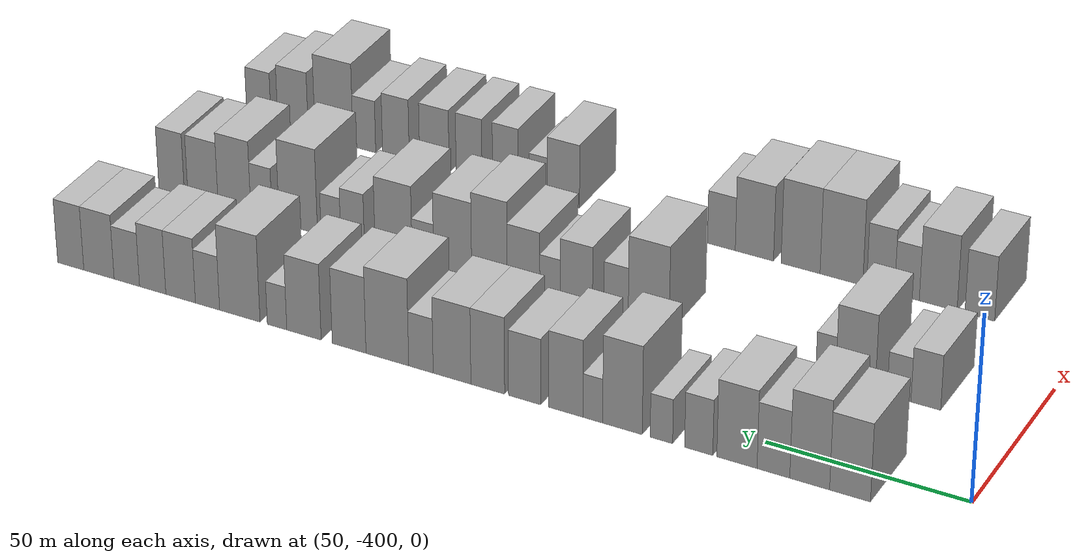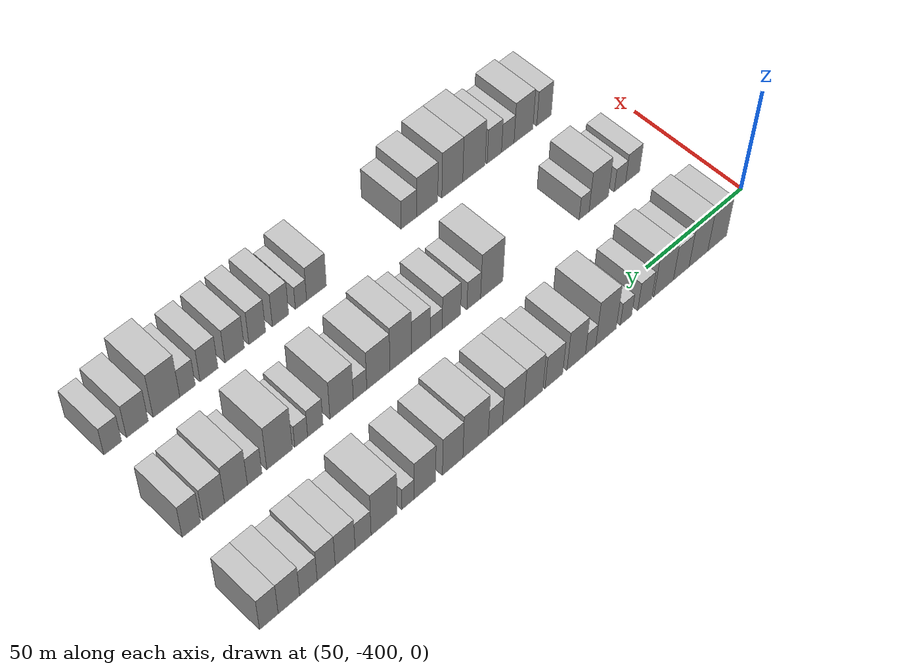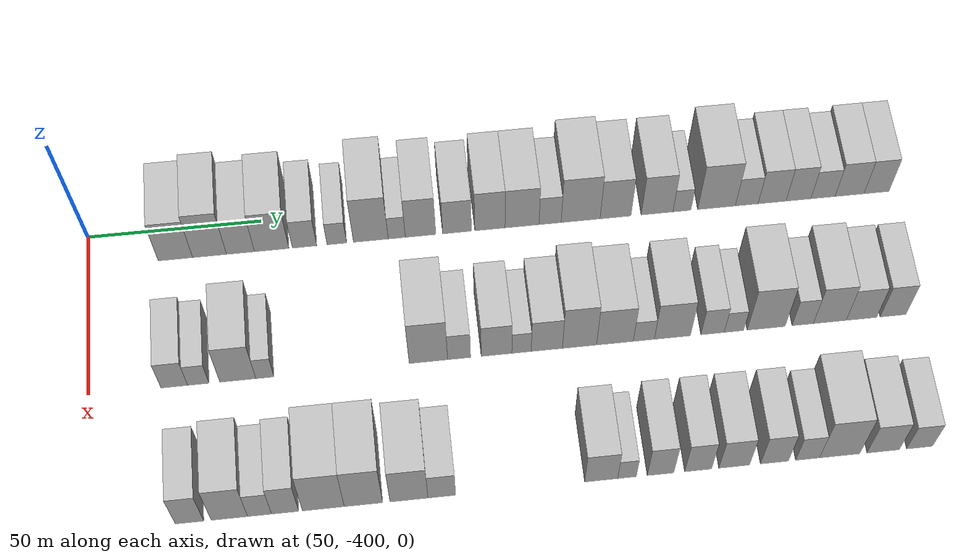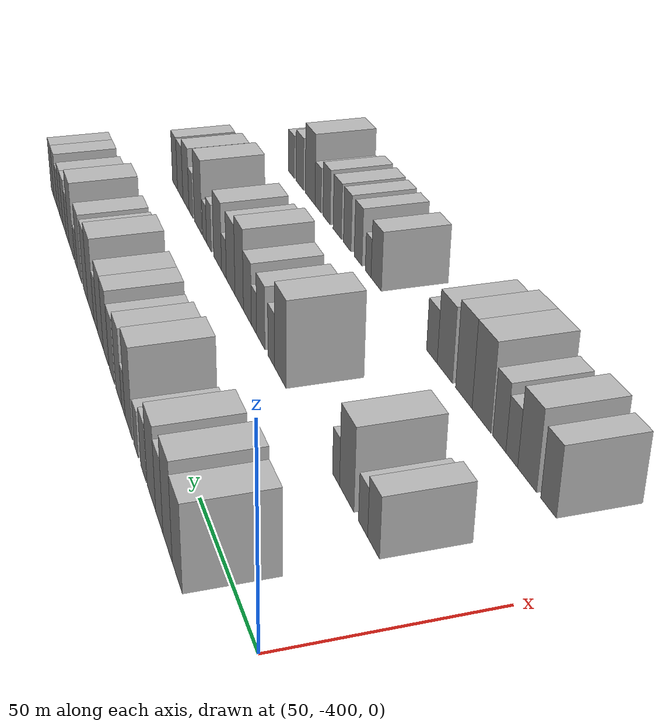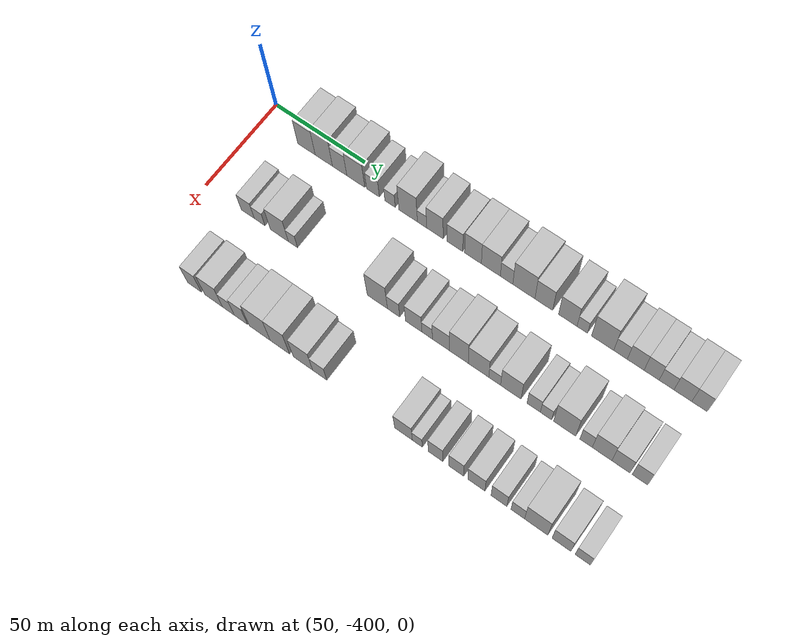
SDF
<sdf version="1.6">
 <world name="default">
  <model name="building_1">
   <static>1</static>
   <pose>50.0000 -375.0617 0 0.000000 0.000000 0.000000</pose>
   <link name="link">
    <pose>0 0 10.50 0 0 0</pose>
    <collision name="collision"><geometry><box><size>20.0000 9.8766 21.0000</size></box></geometry></collision>
    <visual name="visual">
     <cast_shadows>0</cast_shadows>
     <geometry><box><size>20.0000 9.8766 21.0000</size></box></geometry>
     <material>
      <script>
       <uri>model://HANNAS_wall/materials/scripts</uri>
       <uri>model://HANNAS_wall/materials/textures</uri>
       <name>vrc/HANNAS_wall</name>
      </script>
     </material>
    </visual>
   </link>
  </model>
  <model name="building_2">
   <static>1</static>
   <pose>50.0000 -365.2726 0 0.000000 0.000000 0.000000</pose>
   <link name="link">
    <pose>0 0 12.00 0 0 0</pose>
    <collision name="collision"><geometry><box><size>20.0000 9.7016 24.0000</size></box></geometry></collision>
    <visual name="visual">
     <cast_shadows>0</cast_shadows>
     <geometry><box><size>20.0000 9.7016 24.0000</size></box></geometry>
     <material>
      <script>
       <uri>model://HANNAS_wall/materials/scripts</uri>
       <uri>model://HANNAS_wall/materials/textures</uri>
       <name>vrc/HANNAS_wall</name>
      </script>
     </material>
    </visual>
   </link>
  </model>
  <model name="building_3">
   <static>1</static>
   <pose>50.0000 -356.4059 0 0.000000 0.000000 0.000000</pose>
   <link name="link">
    <pose>0 0 9.00 0 0 0</pose>
    <collision name="collision"><geometry><box><size>20.0000 8.0318 18.0000</size></box></geometry></collision>
    <visual name="visual">
     <cast_shadows>0</cast_shadows>
     <geometry><box><size>20.0000 8.0318 18.0000</size></box></geometry>
     <material>
      <script>
       <uri>model://HANNAS_wall/materials/scripts</uri>
       <uri>model://HANNAS_wall/materials/textures</uri>
       <name>vrc/HANNAS_wall</name>
      </script>
     </material>
    </visual>
   </link>
  </model>
  <model name="building_4">
   <static>1</static>
   <pose>50.0000 -347.4172 0 0.000000 0.000000 0.000000</pose>
   <link name="link">
    <pose>0 0 10.50 0 0 0</pose>
    <collision name="collision"><geometry><box><size>20.0000 9.9455 21.0000</size></box></geometry></collision>
    <visual name="visual">
     <cast_shadows>0</cast_shadows>
     <geometry><box><size>20.0000 9.9455 21.0000</size></box></geometry>
     <material>
      <script>
       <uri>model://HANNAS_wall/materials/scripts</uri>
       <uri>model://HANNAS_wall/materials/textures</uri>
       <name>vrc/HANNAS_wall</name>
      </script>
     </material>
    </visual>
   </link>
  </model>
  <model name="building_5">
   <static>1</static>
   <pose>50.0000 -337.9303 0 0.000000 0.000000 0.000000</pose>
   <link name="link">
    <pose>0 0 7.50 0 0 0</pose>
    <collision name="collision"><geometry><box><size>20.0000 7.0283 15.0000</size></box></geometry></collision>
    <visual name="visual">
     <cast_shadows>0</cast_shadows>
     <geometry><box><size>20.0000 7.0283 15.0000</size></box></geometry>
     <material>
      <script>
       <uri>model://HANNAS_wall/materials/scripts</uri>
       <uri>model://HANNAS_wall/materials/textures</uri>
       <name>vrc/HANNAS_wall</name>
      </script>
     </material>
    </visual>
   </link>
  </model>
  <model name="building_6">
   <static>1</static>
   <pose>50.0000 -328.5971 0 0.000000 0.000000 0.000000</pose>
   <link name="link">
    <pose>0 0 6.00 0 0 0</pose>
    <collision name="collision"><geometry><box><size>20.0000 5.6383 12.0000</size></box></geometry></collision>
    <visual name="visual">
     <cast_shadows>0</cast_shadows>
     <geometry><box><size>20.0000 5.6383 12.0000</size></box></geometry>
     <material>
      <script>
       <uri>model://HANNAS_wall/materials/scripts</uri>
       <uri>model://HANNAS_wall/materials/textures</uri>
       <name>vrc/HANNAS_wall</name>
      </script>
     </material>
    </visual>
   </link>
  </model>
  <model name="building_7">
   <static>1</static>
   <pose>50.0000 -318.7597 0 0.000000 0.000000 0.000000</pose>
   <link name="link">
    <pose>0 0 12.00 0 0 0</pose>
    <collision name="collision"><geometry><box><size>20.0000 10.0365 24.0000</size></box></geometry></collision>
    <visual name="visual">
     <cast_shadows>0</cast_shadows>
     <geometry><box><size>20.0000 10.0365 24.0000</size></box></geometry>
     <material>
      <script>
       <uri>model://HANNAS_wall/materials/scripts</uri>
       <uri>model://HANNAS_wall/materials/textures</uri>
       <name>vrc/HANNAS_wall</name>
      </script>
     </material>
    </visual>
   </link>
  </model>
  <model name="building_8">
   <static>1</static>
   <pose>50.0000 -311.2489 0 0.000000 0.000000 0.000000</pose>
   <link name="link">
    <pose>0 0 6.00 0 0 0</pose>
    <collision name="collision"><geometry><box><size>20.0000 4.9851 12.0000</size></box></geometry></collision>
    <visual name="visual">
     <cast_shadows>0</cast_shadows>
     <geometry><box><size>20.0000 4.9851 12.0000</size></box></geometry>
     <material>
      <script>
       <uri>model://HANNAS_wall/materials/scripts</uri>
       <uri>model://HANNAS_wall/materials/textures</uri>
       <name>vrc/HANNAS_wall</name>
      </script>
     </material>
    </visual>
   </link>
  </model>
  <model name="building_9">
   <static>1</static>
   <pose>50.0000 -304.3338 0 0.000000 0.000000 0.000000</pose>
   <link name="link">
    <pose>0 0 10.50 0 0 0</pose>
    <collision name="collision"><geometry><box><size>20.0000 8.8450 21.0000</size></box></geometry></collision>
    <visual name="visual">
     <cast_shadows>0</cast_shadows>
     <geometry><box><size>20.0000 8.8450 21.0000</size></box></geometry>
     <material>
      <script>
       <uri>model://HANNAS_wall/materials/scripts</uri>
       <uri>model://HANNAS_wall/materials/textures</uri>
       <name>vrc/HANNAS_wall</name>
      </script>
     </material>
    </visual>
   </link>
  </model>
  <model name="building_10">
   <static>1</static>
   <pose>50.0000 -293.7215 0 0.000000 0.000000 0.000000</pose>
   <link name="link">
    <pose>0 0 9.00 0 0 0</pose>
    <collision name="collision"><geometry><box><size>20.0000 8.3798 18.0000</size></box></geometry></collision>
    <visual name="visual">
     <cast_shadows>0</cast_shadows>
     <geometry><box><size>20.0000 8.3798 18.0000</size></box></geometry>
     <material>
      <script>
       <uri>model://HANNAS_wall/materials/scripts</uri>
       <uri>model://HANNAS_wall/materials/textures</uri>
       <name>vrc/HANNAS_wall</name>
      </script>
     </material>
    </visual>
   </link>
  </model>
  <model name="building_11">
   <static>1</static>
   <pose>50.0000 -284.1320 0 0.000000 0.000000 0.000000</pose>
   <link name="link">
    <pose>0 0 10.50 0 0 0</pose>
    <collision name="collision"><geometry><box><size>20.0000 8.7991 21.0000</size></box></geometry></collision>
    <visual name="visual">
     <cast_shadows>0</cast_shadows>
     <geometry><box><size>20.0000 8.7991 21.0000</size></box></geometry>
     <material>
      <script>
       <uri>model://HANNAS_wall/materials/scripts</uri>
       <uri>model://HANNAS_wall/materials/textures</uri>
       <name>vrc/HANNAS_wall</name>
      </script>
     </material>
    </visual>
   </link>
  </model>
  <model name="building_12">
   <static>1</static>
   <pose>50.0000 -274.7714 0 0.000000 0.000000 0.000000</pose>
   <link name="link">
    <pose>0 0 10.50 0 0 0</pose>
    <collision name="collision"><geometry><box><size>20.0000 9.9222 21.0000</size></box></geometry></collision>
    <visual name="visual">
     <cast_shadows>0</cast_shadows>
     <geometry><box><size>20.0000 9.9222 21.0000</size></box></geometry>
     <material>
      <script>
       <uri>model://HANNAS_wall/materials/scripts</uri>
       <uri>model://HANNAS_wall/materials/textures</uri>
       <name>vrc/HANNAS_wall</name>
      </script>
     </material>
    </visual>
   </link>
  </model>
  <model name="building_13">
   <static>1</static>
   <pose>50.0000 -266.5715 0 0.000000 0.000000 0.000000</pose>
   <link name="link">
    <pose>0 0 7.50 0 0 0</pose>
    <collision name="collision"><geometry><box><size>20.0000 6.4775 15.0000</size></box></geometry></collision>
    <visual name="visual">
     <cast_shadows>0</cast_shadows>
     <geometry><box><size>20.0000 6.4775 15.0000</size></box></geometry>
     <material>
      <script>
       <uri>model://HANNAS_wall/materials/scripts</uri>
       <uri>model://HANNAS_wall/materials/textures</uri>
       <name>vrc/HANNAS_wall</name>
      </script>
     </material>
    </visual>
   </link>
  </model>
  <model name="building_14">
   <static>1</static>
   <pose>50.0000 -257.6300 0 0.000000 0.000000 0.000000</pose>
   <link name="link">
    <pose>0 0 12.00 0 0 0</pose>
    <collision name="collision"><geometry><box><size>20.0000 11.4055 24.0000</size></box></geometry></collision>
    <visual name="visual">
     <cast_shadows>0</cast_shadows>
     <geometry><box><size>20.0000 11.4055 24.0000</size></box></geometry>
     <material>
      <script>
       <uri>model://HANNAS_wall/materials/scripts</uri>
       <uri>model://HANNAS_wall/materials/textures</uri>
       <name>vrc/HANNAS_wall</name>
      </script>
     </material>
    </visual>
   </link>
  </model>
  <model name="building_15">
   <static>1</static>
   <pose>50.0000 -247.3824 0 0.000000 0.000000 0.000000</pose>
   <link name="link">
    <pose>0 0 10.50 0 0 0</pose>
    <collision name="collision"><geometry><box><size>20.0000 9.0897 21.0000</size></box></geometry></collision>
    <visual name="visual">
     <cast_shadows>0</cast_shadows>
     <geometry><box><size>20.0000 9.0897 21.0000</size></box></geometry>
     <material>
      <script>
       <uri>model://HANNAS_wall/materials/scripts</uri>
       <uri>model://HANNAS_wall/materials/textures</uri>
       <name>vrc/HANNAS_wall</name>
      </script>
     </material>
    </visual>
   </link>
  </model>
  <model name="building_16">
   <static>1</static>
   <pose>50.0000 -235.1703 0 0.000000 0.000000 0.000000</pose>
   <link name="link">
    <pose>0 0 10.50 0 0 0</pose>
    <collision name="collision"><geometry><box><size>20.0000 9.3346 21.0000</size></box></geometry></collision>
    <visual name="visual">
     <cast_shadows>0</cast_shadows>
     <geometry><box><size>20.0000 9.3346 21.0000</size></box></geometry>
     <material>
      <script>
       <uri>model://HANNAS_wall/materials/scripts</uri>
       <uri>model://HANNAS_wall/materials/textures</uri>
       <name>vrc/HANNAS_wall</name>
      </script>
     </material>
    </visual>
   </link>
  </model>
  <model name="building_17">
   <static>1</static>
   <pose>50.0000 -227.8410 0 0.000000 0.000000 0.000000</pose>
   <link name="link">
    <pose>0 0 6.00 0 0 0</pose>
    <collision name="collision"><geometry><box><size>20.0000 5.3239 12.0000</size></box></geometry></collision>
    <visual name="visual">
     <cast_shadows>0</cast_shadows>
     <geometry><box><size>20.0000 5.3239 12.0000</size></box></geometry>
     <material>
      <script>
       <uri>model://HANNAS_wall/materials/scripts</uri>
       <uri>model://HANNAS_wall/materials/textures</uri>
       <name>vrc/HANNAS_wall</name>
      </script>
     </material>
    </visual>
   </link>
  </model>
  <model name="building_18">
   <static>1</static>
   <pose>50.0000 -217.6135 0 0.000000 0.000000 0.000000</pose>
   <link name="link">
    <pose>0 0 12.00 0 0 0</pose>
    <collision name="collision"><geometry><box><size>20.0000 11.1311 24.0000</size></box></geometry></collision>
    <visual name="visual">
     <cast_shadows>0</cast_shadows>
     <geometry><box><size>20.0000 11.1311 24.0000</size></box></geometry>
     <material>
      <script>
       <uri>model://HANNAS_wall/materials/scripts</uri>
       <uri>model://HANNAS_wall/materials/textures</uri>
       <name>vrc/HANNAS_wall</name>
      </script>
     </material>
    </visual>
   </link>
  </model>
  <model name="building_19">
   <static>1</static>
   <pose>50.0000 -208.6832 0 0.000000 0.000000 0.000000</pose>
   <link name="link">
    <pose>0 0 7.50 0 0 0</pose>
    <collision name="collision"><geometry><box><size>20.0000 6.7295 15.0000</size></box></geometry></collision>
    <visual name="visual">
     <cast_shadows>0</cast_shadows>
     <geometry><box><size>20.0000 6.7295 15.0000</size></box></geometry>
     <material>
      <script>
       <uri>model://HANNAS_wall/materials/scripts</uri>
       <uri>model://HANNAS_wall/materials/textures</uri>
       <name>vrc/HANNAS_wall</name>
      </script>
     </material>
    </visual>
   </link>
  </model>
  <model name="building_20">
   <static>1</static>
   <pose>50.0000 -201.1800 0 0.000000 0.000000 0.000000</pose>
   <link name="link">
    <pose>0 0 9.00 0 0 0</pose>
    <collision name="collision"><geometry><box><size>20.0000 8.2770 18.0000</size></box></geometry></collision>
    <visual name="visual">
     <cast_shadows>0</cast_shadows>
     <geometry><box><size>20.0000 8.2770 18.0000</size></box></geometry>
     <material>
      <script>
       <uri>model://HANNAS_wall/materials/scripts</uri>
       <uri>model://HANNAS_wall/materials/textures</uri>
       <name>vrc/HANNAS_wall</name>
      </script>
     </material>
    </visual>
   </link>
  </model>
  <model name="building_21">
   <static>1</static>
   <pose>50.0000 -193.3477 0 0.000000 0.000000 0.000000</pose>
   <link name="link">
    <pose>0 0 9.00 0 0 0</pose>
    <collision name="collision"><geometry><box><size>20.0000 7.3875 18.0000</size></box></geometry></collision>
    <visual name="visual">
     <cast_shadows>0</cast_shadows>
     <geometry><box><size>20.0000 7.3875 18.0000</size></box></geometry>
     <material>
      <script>
       <uri>model://HANNAS_wall/materials/scripts</uri>
       <uri>model://HANNAS_wall/materials/textures</uri>
       <name>vrc/HANNAS_wall</name>
      </script>
     </material>
    </visual>
   </link>
  </model>
  <model name="building_22">
   <static>1</static>
   <pose>50.0000 -186.0562 0 0.000000 0.000000 0.000000</pose>
   <link name="link">
    <pose>0 0 7.50 0 0 0</pose>
    <collision name="collision"><geometry><box><size>20.0000 7.1954 15.0000</size></box></geometry></collision>
    <visual name="visual">
     <cast_shadows>0</cast_shadows>
     <geometry><box><size>20.0000 7.1954 15.0000</size></box></geometry>
     <material>
      <script>
       <uri>model://HANNAS_wall/materials/scripts</uri>
       <uri>model://HANNAS_wall/materials/textures</uri>
       <name>vrc/HANNAS_wall</name>
      </script>
     </material>
    </visual>
   </link>
  </model>
  <model name="building_23">
   <static>1</static>
   <pose>50.0000 -178.1469 0 0.000000 0.000000 0.000000</pose>
   <link name="link">
    <pose>0 0 9.00 0 0 0</pose>
    <collision name="collision"><geometry><box><size>20.0000 8.6233 18.0000</size></box></geometry></collision>
    <visual name="visual">
     <cast_shadows>0</cast_shadows>
     <geometry><box><size>20.0000 8.6233 18.0000</size></box></geometry>
     <material>
      <script>
       <uri>model://HANNAS_wall/materials/scripts</uri>
       <uri>model://HANNAS_wall/materials/textures</uri>
       <name>vrc/HANNAS_wall</name>
      </script>
     </material>
    </visual>
   </link>
  </model>
  <model name="building_24">
   <static>1</static>
   <pose>50.0000 -170.1049 0 0.000000 0.000000 0.000000</pose>
   <link name="link">
    <pose>0 0 9.00 0 0 0</pose>
    <collision name="collision"><geometry><box><size>20.0000 7.4606 18.0000</size></box></geometry></collision>
    <visual name="visual">
     <cast_shadows>0</cast_shadows>
     <geometry><box><size>20.0000 7.4606 18.0000</size></box></geometry>
     <material>
      <script>
       <uri>model://HANNAS_wall/materials/scripts</uri>
       <uri>model://HANNAS_wall/materials/textures</uri>
       <name>vrc/HANNAS_wall</name>
      </script>
     </material>
    </visual>
   </link>
  </model>
  <model name="building_87">
   <static>1</static>
   <pose>90.0000 -376.3183 0 0.000000 0.000000 0.000000</pose>
   <link name="link">
    <pose>0 0 7.50 0 0 0</pose>
    <collision name="collision"><geometry><box><size>20.0000 7.3633 15.0000</size></box></geometry></collision>
    <visual name="visual">
     <cast_shadows>0</cast_shadows>
     <geometry><box><size>20.0000 7.3633 15.0000</size></box></geometry>
     <material>
      <script>
       <uri>model://HANNAS_wall/materials/scripts</uri>
       <uri>model://HANNAS_wall/materials/textures</uri>
       <name>vrc/HANNAS_wall</name>
      </script>
     </material>
    </visual>
   </link>
  </model>
  <model name="building_88">
   <static>1</static>
   <pose>90.0000 -369.6864 0 0.000000 0.000000 0.000000</pose>
   <link name="link">
    <pose>0 0 6.00 0 0 0</pose>
    <collision name="collision"><geometry><box><size>20.0000 5.9006 12.0000</size></box></geometry></collision>
    <visual name="visual">
     <cast_shadows>0</cast_shadows>
     <geometry><box><size>20.0000 5.9006 12.0000</size></box></geometry>
     <material>
      <script>
       <uri>model://HANNAS_wall/materials/scripts</uri>
       <uri>model://HANNAS_wall/materials/textures</uri>
       <name>vrc/HANNAS_wall</name>
      </script>
     </material>
    </visual>
   </link>
  </model>
  <model name="building_89">
   <static>1</static>
   <pose>90.0000 -358.7619 0 0.000000 0.000000 0.000000</pose>
   <link name="link">
    <pose>0 0 10.50 0 0 0</pose>
    <collision name="collision"><geometry><box><size>20.0000 9.9483 21.0000</size></box></geometry></collision>
    <visual name="visual">
     <cast_shadows>0</cast_shadows>
     <geometry><box><size>20.0000 9.9483 21.0000</size></box></geometry>
     <material>
      <script>
       <uri>model://HANNAS_wall/materials/scripts</uri>
       <uri>model://HANNAS_wall/materials/textures</uri>
       <name>vrc/HANNAS_wall</name>
      </script>
     </material>
    </visual>
   </link>
  </model>
  <model name="building_90">
   <static>1</static>
   <pose>90.0000 -351.2698 0 0.000000 0.000000 0.000000</pose>
   <link name="link">
    <pose>0 0 6.00 0 0 0</pose>
    <collision name="collision"><geometry><box><size>20.0000 5.0361 12.0000</size></box></geometry></collision>
    <visual name="visual">
     <cast_shadows>0</cast_shadows>
     <geometry><box><size>20.0000 5.0361 12.0000</size></box></geometry>
     <material>
      <script>
       <uri>model://HANNAS_wall/materials/scripts</uri>
       <uri>model://HANNAS_wall/materials/textures</uri>
       <name>vrc/HANNAS_wall</name>
      </script>
     </material>
    </visual>
   </link>
  </model>
  <model name="building_91">
   <static>1</static>
   <pose>90.0000 -305.6567 0 0.000000 0.000000 0.000000</pose>
   <link name="link">
    <pose>0 0 12.00 0 0 0</pose>
    <collision name="collision"><geometry><box><size>20.0000 10.7300 24.0000</size></box></geometry></collision>
    <visual name="visual">
     <cast_shadows>0</cast_shadows>
     <geometry><box><size>20.0000 10.7300 24.0000</size></box></geometry>
     <material>
      <script>
       <uri>model://HANNAS_wall/materials/scripts</uri>
       <uri>model://HANNAS_wall/materials/textures</uri>
       <name>vrc/HANNAS_wall</name>
      </script>
     </material>
    </visual>
   </link>
  </model>
  <model name="building_92">
   <static>1</static>
   <pose>90.0000 -297.0650 0 0.000000 0.000000 0.000000</pose>
   <link name="link">
    <pose>0 0 7.50 0 0 0</pose>
    <collision name="collision"><geometry><box><size>20.0000 6.4535 15.0000</size></box></geometry></collision>
    <visual name="visual">
     <cast_shadows>0</cast_shadows>
     <geometry><box><size>20.0000 6.4535 15.0000</size></box></geometry>
     <material>
      <script>
       <uri>model://HANNAS_wall/materials/scripts</uri>
       <uri>model://HANNAS_wall/materials/textures</uri>
       <name>vrc/HANNAS_wall</name>
      </script>
     </material>
    </visual>
   </link>
  </model>
  <model name="building_93">
   <static>1</static>
   <pose>90.0000 -286.5413 0 0.000000 0.000000 0.000000</pose>
   <link name="link">
    <pose>0 0 9.00 0 0 0</pose>
    <collision name="collision"><geometry><box><size>20.0000 8.5939 18.0000</size></box></geometry></collision>
    <visual name="visual">
     <cast_shadows>0</cast_shadows>
     <geometry><box><size>20.0000 8.5939 18.0000</size></box></geometry>
     <material>
      <script>
       <uri>model://HANNAS_wall/materials/scripts</uri>
       <uri>model://HANNAS_wall/materials/textures</uri>
       <name>vrc/HANNAS_wall</name>
      </script>
     </material>
    </visual>
   </link>
  </model>
  <model name="building_94">
   <static>1</static>
   <pose>90.0000 -279.5158 0 0.000000 0.000000 0.000000</pose>
   <link name="link">
    <pose>0 0 6.00 0 0 0</pose>
    <collision name="collision"><geometry><box><size>20.0000 5.4570 12.0000</size></box></geometry></collision>
    <visual name="visual">
     <cast_shadows>0</cast_shadows>
     <geometry><box><size>20.0000 5.4570 12.0000</size></box></geometry>
     <material>
      <script>
       <uri>model://HANNAS_wall/materials/scripts</uri>
       <uri>model://HANNAS_wall/materials/textures</uri>
       <name>vrc/HANNAS_wall</name>
      </script>
     </material>
    </visual>
   </link>
  </model>
  <model name="building_95">
   <static>1</static>
   <pose>90.0000 -272.3932 0 0.000000 0.000000 0.000000</pose>
   <link name="link">
    <pose>0 0 9.00 0 0 0</pose>
    <collision name="collision"><geometry><box><size>20.0000 8.7882 18.0000</size></box></geometry></collision>
    <visual name="visual">
     <cast_shadows>0</cast_shadows>
     <geometry><box><size>20.0000 8.7882 18.0000</size></box></geometry>
     <material>
      <script>
       <uri>model://HANNAS_wall/materials/scripts</uri>
       <uri>model://HANNAS_wall/materials/textures</uri>
       <name>vrc/HANNAS_wall</name>
      </script>
     </material>
    </visual>
   </link>
  </model>
  <model name="building_96">
   <static>1</static>
   <pose>90.0000 -263.1696 0 0.000000 0.000000 0.000000</pose>
   <link name="link">
    <pose>0 0 12.00 0 0 0</pose>
    <collision name="collision"><geometry><box><size>20.0000 9.6590 24.0000</size></box></geometry></collision>
    <visual name="visual">
     <cast_shadows>0</cast_shadows>
     <geometry><box><size>20.0000 9.6590 24.0000</size></box></geometry>
     <material>
      <script>
       <uri>model://HANNAS_wall/materials/scripts</uri>
       <uri>model://HANNAS_wall/materials/textures</uri>
       <name>vrc/HANNAS_wall</name>
      </script>
     </material>
    </visual>
   </link>
  </model>
  <model name="building_97">
   <static>1</static>
   <pose>90.0000 -253.1391 0 0.000000 0.000000 0.000000</pose>
   <link name="link">
    <pose>0 0 10.50 0 0 0</pose>
    <collision name="collision"><geometry><box><size>20.0000 10.4021 21.0000</size></box></geometry></collision>
    <visual name="visual">
     <cast_shadows>0</cast_shadows>
     <geometry><box><size>20.0000 10.4021 21.0000</size></box></geometry>
     <material>
      <script>
       <uri>model://HANNAS_wall/materials/scripts</uri>
       <uri>model://HANNAS_wall/materials/textures</uri>
       <name>vrc/HANNAS_wall</name>
      </script>
     </material>
    </visual>
   </link>
  </model>
  <model name="building_98">
   <static>1</static>
   <pose>90.0000 -244.9628 0 0.000000 0.000000 0.000000</pose>
   <link name="link">
    <pose>0 0 6.00 0 0 0</pose>
    <collision name="collision"><geometry><box><size>20.0000 5.9505 12.0000</size></box></geometry></collision>
    <visual name="visual">
     <cast_shadows>0</cast_shadows>
     <geometry><box><size>20.0000 5.9505 12.0000</size></box></geometry>
     <material>
      <script>
       <uri>model://HANNAS_wall/materials/scripts</uri>
       <uri>model://HANNAS_wall/materials/textures</uri>
       <name>vrc/HANNAS_wall</name>
      </script>
     </material>
    </visual>
   </link>
  </model>
  <model name="building_99">
   <static>1</static>
   <pose>90.0000 -236.8596 0 0.000000 0.000000 0.000000</pose>
   <link name="link">
    <pose>0 0 10.50 0 0 0</pose>
    <collision name="collision"><geometry><box><size>20.0000 10.2559 21.0000</size></box></geometry></collision>
    <visual name="visual">
     <cast_shadows>0</cast_shadows>
     <geometry><box><size>20.0000 10.2559 21.0000</size></box></geometry>
     <material>
      <script>
       <uri>model://HANNAS_wall/materials/scripts</uri>
       <uri>model://HANNAS_wall/materials/textures</uri>
       <name>vrc/HANNAS_wall</name>
      </script>
     </material>
    </visual>
   </link>
  </model>
  <model name="building_100">
   <static>1</static>
   <pose>90.0000 -225.4200 0 0.000000 0.000000 0.000000</pose>
   <link name="link">
    <pose>0 0 7.50 0 0 0</pose>
    <collision name="collision"><geometry><box><size>20.0000 6.6235 15.0000</size></box></geometry></collision>
    <visual name="visual">
     <cast_shadows>0</cast_shadows>
     <geometry><box><size>20.0000 6.6235 15.0000</size></box></geometry>
     <material>
      <script>
       <uri>model://HANNAS_wall/materials/scripts</uri>
       <uri>model://HANNAS_wall/materials/textures</uri>
       <name>vrc/HANNAS_wall</name>
      </script>
     </material>
    </visual>
   </link>
  </model>
  <model name="building_101">
   <static>1</static>
   <pose>90.0000 -219.3354 0 0.000000 0.000000 0.000000</pose>
   <link name="link">
    <pose>0 0 6.00 0 0 0</pose>
    <collision name="collision"><geometry><box><size>20.0000 5.5457 12.0000</size></box></geometry></collision>
    <visual name="visual">
     <cast_shadows>0</cast_shadows>
     <geometry><box><size>20.0000 5.5457 12.0000</size></box></geometry>
     <material>
      <script>
       <uri>model://HANNAS_wall/materials/scripts</uri>
       <uri>model://HANNAS_wall/materials/textures</uri>
       <name>vrc/HANNAS_wall</name>
      </script>
     </material>
    </visual>
   </link>
  </model>
  <model name="building_102">
   <static>1</static>
   <pose>90.0000 -210.1430 0 0.000000 0.000000 0.000000</pose>
   <link name="link">
    <pose>0 0 12.00 0 0 0</pose>
    <collision name="collision"><geometry><box><size>20.0000 10.8391 24.0000</size></box></geometry></collision>
    <visual name="visual">
     <cast_shadows>0</cast_shadows>
     <geometry><box><size>20.0000 10.8391 24.0000</size></box></geometry>
     <material>
      <script>
       <uri>model://HANNAS_wall/materials/scripts</uri>
       <uri>model://HANNAS_wall/materials/textures</uri>
       <name>vrc/HANNAS_wall</name>
      </script>
     </material>
    </visual>
   </link>
  </model>
  <model name="building_103">
   <static>1</static>
   <pose>90.0000 -199.6832 0 0.000000 0.000000 0.000000</pose>
   <link name="link">
    <pose>0 0 7.50 0 0 0</pose>
    <collision name="collision"><geometry><box><size>20.0000 6.0807 15.0000</size></box></geometry></collision>
    <visual name="visual">
     <cast_shadows>0</cast_shadows>
     <geometry><box><size>20.0000 6.0807 15.0000</size></box></geometry>
     <material>
      <script>
       <uri>model://HANNAS_wall/materials/scripts</uri>
       <uri>model://HANNAS_wall/materials/textures</uri>
       <name>vrc/HANNAS_wall</name>
      </script>
     </material>
    </visual>
   </link>
  </model>
  <model name="building_104">
   <static>1</static>
   <pose>90.0000 -191.9270 0 0.000000 0.000000 0.000000</pose>
   <link name="link">
    <pose>0 0 10.50 0 0 0</pose>
    <collision name="collision"><geometry><box><size>20.0000 9.4317 21.0000</size></box></geometry></collision>
    <visual name="visual">
     <cast_shadows>0</cast_shadows>
     <geometry><box><size>20.0000 9.4317 21.0000</size></box></geometry>
     <material>
      <script>
       <uri>model://HANNAS_wall/materials/scripts</uri>
       <uri>model://HANNAS_wall/materials/textures</uri>
       <name>vrc/HANNAS_wall</name>
      </script>
     </material>
    </visual>
   </link>
  </model>
  <model name="building_105">
   <static>1</static>
   <pose>90.0000 -182.8440 0 0.000000 0.000000 0.000000</pose>
   <link name="link">
    <pose>0 0 9.00 0 0 0</pose>
    <collision name="collision"><geometry><box><size>20.0000 8.7341 18.0000</size></box></geometry></collision>
    <visual name="visual">
     <cast_shadows>0</cast_shadows>
     <geometry><box><size>20.0000 8.7341 18.0000</size></box></geometry>
     <material>
      <script>
       <uri>model://HANNAS_wall/materials/scripts</uri>
       <uri>model://HANNAS_wall/materials/textures</uri>
       <name>vrc/HANNAS_wall</name>
      </script>
     </material>
    </visual>
   </link>
  </model>
  <model name="building_106">
   <static>1</static>
   <pose>90.0000 -173.7537 0 0.000000 0.000000 0.000000</pose>
   <link name="link">
    <pose>0 0 9.00 0 0 0</pose>
    <collision name="collision"><geometry><box><size>20.0000 7.4464 18.0000</size></box></geometry></collision>
    <visual name="visual">
     <cast_shadows>0</cast_shadows>
     <geometry><box><size>20.0000 7.4464 18.0000</size></box></geometry>
     <material>
      <script>
       <uri>model://HANNAS_wall/materials/scripts</uri>
       <uri>model://HANNAS_wall/materials/textures</uri>
       <name>vrc/HANNAS_wall</name>
      </script>
     </material>
    </visual>
   </link>
  </model>
  <model name="building_167">
   <static>1</static>
   <pose>130.0000 -373.2179 0 0.000000 0.000000 0.000000</pose>
   <link name="link">
    <pose>0 0 9.00 0 0 0</pose>
    <collision name="collision"><geometry><box><size>20.0000 7.5641 18.0000</size></box></geometry></collision>
    <visual name="visual">
     <cast_shadows>0</cast_shadows>
     <geometry><box><size>20.0000 7.5641 18.0000</size></box></geometry>
     <material>
      <script>
       <uri>model://HANNAS_wall/materials/scripts</uri>
       <uri>model://HANNAS_wall/materials/textures</uri>
       <name>vrc/HANNAS_wall</name>
      </script>
     </material>
    </visual>
   </link>
  </model>
  <model name="building_168">
   <static>1</static>
   <pose>130.0000 -362.5831 0 0.000000 0.000000 0.000000</pose>
   <link name="link">
    <pose>0 0 10.50 0 0 0</pose>
    <collision name="collision"><geometry><box><size>20.0000 9.7055 21.0000</size></box></geometry></collision>
    <visual name="visual">
     <cast_shadows>0</cast_shadows>
     <geometry><box><size>20.0000 9.7055 21.0000</size></box></geometry>
     <material>
      <script>
       <uri>model://HANNAS_wall/materials/scripts</uri>
       <uri>model://HANNAS_wall/materials/textures</uri>
       <name>vrc/HANNAS_wall</name>
      </script>
     </material>
    </visual>
   </link>
  </model>
  <model name="building_169">
   <static>1</static>
   <pose>130.0000 -354.5400 0 0.000000 0.000000 0.000000</pose>
   <link name="link">
    <pose>0 0 7.50 0 0 0</pose>
    <collision name="collision"><geometry><box><size>20.0000 6.3807 15.0000</size></box></geometry></collision>
    <visual name="visual">
     <cast_shadows>0</cast_shadows>
     <geometry><box><size>20.0000 6.3807 15.0000</size></box></geometry>
     <material>
      <script>
       <uri>model://HANNAS_wall/materials/scripts</uri>
       <uri>model://HANNAS_wall/materials/textures</uri>
       <name>vrc/HANNAS_wall</name>
      </script>
     </material>
    </visual>
   </link>
  </model>
  <model name="building_170">
   <static>1</static>
   <pose>130.0000 -347.7199 0 0.000000 0.000000 0.000000</pose>
   <link name="link">
    <pose>0 0 9.00 0 0 0</pose>
    <collision name="collision"><geometry><box><size>20.0000 7.2595 18.0000</size></box></geometry></collision>
    <visual name="visual">
     <cast_shadows>0</cast_shadows>
     <geometry><box><size>20.0000 7.2595 18.0000</size></box></geometry>
     <material>
      <script>
       <uri>model://HANNAS_wall/materials/scripts</uri>
       <uri>model://HANNAS_wall/materials/textures</uri>
       <name>vrc/HANNAS_wall</name>
      </script>
     </material>
    </visual>
   </link>
  </model>
  <model name="building_171">
   <static>1</static>
   <pose>130.0000 -337.4880 0 0.000000 0.000000 0.000000</pose>
   <link name="link">
    <pose>0 0 12.00 0 0 0</pose>
    <collision name="collision"><geometry><box><size>20.0000 11.2043 24.0000</size></box></geometry></collision>
    <visual name="visual">
     <cast_shadows>0</cast_shadows>
     <geometry><box><size>20.0000 11.2043 24.0000</size></box></geometry>
     <material>
      <script>
       <uri>model://HANNAS_wall/materials/scripts</uri>
       <uri>model://HANNAS_wall/materials/textures</uri>
       <name>vrc/HANNAS_wall</name>
      </script>
     </material>
    </visual>
   </link>
  </model>
  <model name="building_172">
   <static>1</static>
   <pose>130.0000 -326.7378 0 0.000000 0.000000 0.000000</pose>
   <link name="link">
    <pose>0 0 12.00 0 0 0</pose>
    <collision name="collision"><geometry><box><size>20.0000 10.2961 24.0000</size></box></geometry></collision>
    <visual name="visual">
     <cast_shadows>0</cast_shadows>
     <geometry><box><size>20.0000 10.2961 24.0000</size></box></geometry>
     <material>
      <script>
       <uri>model://HANNAS_wall/materials/scripts</uri>
       <uri>model://HANNAS_wall/materials/textures</uri>
       <name>vrc/HANNAS_wall</name>
      </script>
     </material>
    </visual>
   </link>
  </model>
  <model name="building_173">
   <static>1</static>
   <pose>130.0000 -314.4885 0 0.000000 0.000000 0.000000</pose>
   <link name="link">
    <pose>0 0 10.50 0 0 0</pose>
    <collision name="collision"><geometry><box><size>20.0000 10.2024 21.0000</size></box></geometry></collision>
    <visual name="visual">
     <cast_shadows>0</cast_shadows>
     <geometry><box><size>20.0000 10.2024 21.0000</size></box></geometry>
     <material>
      <script>
       <uri>model://HANNAS_wall/materials/scripts</uri>
       <uri>model://HANNAS_wall/materials/textures</uri>
       <name>vrc/HANNAS_wall</name>
      </script>
     </material>
    </visual>
   </link>
  </model>
  <model name="building_174">
   <static>1</static>
   <pose>130.0000 -305.6575 0 0.000000 0.000000 0.000000</pose>
   <link name="link">
    <pose>0 0 7.50 0 0 0</pose>
    <collision name="collision"><geometry><box><size>20.0000 7.4597 15.0000</size></box></geometry></collision>
    <visual name="visual">
     <cast_shadows>0</cast_shadows>
     <geometry><box><size>20.0000 7.4597 15.0000</size></box></geometry>
     <material>
      <script>
       <uri>model://HANNAS_wall/materials/scripts</uri>
       <uri>model://HANNAS_wall/materials/textures</uri>
       <name>vrc/HANNAS_wall</name>
      </script>
     </material>
    </visual>
   </link>
  </model>
  <model name="building_175">
   <static>1</static>
   <pose>130.0000 -262.4698 0 0.000000 0.000000 0.000000</pose>
   <link name="link">
    <pose>0 0 9.00 0 0 0</pose>
    <collision name="collision"><geometry><box><size>20.0000 8.9719 18.0000</size></box></geometry></collision>
    <visual name="visual">
     <cast_shadows>0</cast_shadows>
     <geometry><box><size>20.0000 8.9719 18.0000</size></box></geometry>
     <material>
      <script>
       <uri>model://HANNAS_wall/materials/scripts</uri>
       <uri>model://HANNAS_wall/materials/textures</uri>
       <name>vrc/HANNAS_wall</name>
      </script>
     </material>
    </visual>
   </link>
  </model>
  <model name="building_176">
   <static>1</static>
   <pose>130.0000 -255.4500 0 0.000000 0.000000 0.000000</pose>
   <link name="link">
    <pose>0 0 6.00 0 0 0</pose>
    <collision name="collision"><geometry><box><size>20.0000 5.0678 12.0000</size></box></geometry></collision>
    <visual name="visual">
     <cast_shadows>0</cast_shadows>
     <geometry><box><size>20.0000 5.0678 12.0000</size></box></geometry>
     <material>
      <script>
       <uri>model://HANNAS_wall/materials/scripts</uri>
       <uri>model://HANNAS_wall/materials/textures</uri>
       <name>vrc/HANNAS_wall</name>
      </script>
     </material>
    </visual>
   </link>
  </model>
  <model name="building_177">
   <static>1</static>
   <pose>130.0000 -246.2973 0 0.000000 0.000000 0.000000</pose>
   <link name="link">
    <pose>0 0 9.00 0 0 0</pose>
    <collision name="collision"><geometry><box><size>20.0000 7.2375 18.0000</size></box></geometry></collision>
    <visual name="visual">
     <cast_shadows>0</cast_shadows>
     <geometry><box><size>20.0000 7.2375 18.0000</size></box></geometry>
     <material>
      <script>
       <uri>model://HANNAS_wall/materials/scripts</uri>
       <uri>model://HANNAS_wall/materials/textures</uri>
       <name>vrc/HANNAS_wall</name>
      </script>
     </material>
    </visual>
   </link>
  </model>
  <model name="building_178">
   <static>1</static>
   <pose>130.0000 -236.0086 0 0.000000 0.000000 0.000000</pose>
   <link name="link">
    <pose>0 0 9.00 0 0 0</pose>
    <collision name="collision"><geometry><box><size>20.0000 7.3398 18.0000</size></box></geometry></collision>
    <visual name="visual">
     <cast_shadows>0</cast_shadows>
     <geometry><box><size>20.0000 7.3398 18.0000</size></box></geometry>
     <material>
      <script>
       <uri>model://HANNAS_wall/materials/scripts</uri>
       <uri>model://HANNAS_wall/materials/textures</uri>
       <name>vrc/HANNAS_wall</name>
      </script>
     </material>
    </visual>
   </link>
  </model>
  <model name="building_179">
   <static>1</static>
   <pose>130.0000 -226.1347 0 0.000000 0.000000 0.000000</pose>
   <link name="link">
    <pose>0 0 9.00 0 0 0</pose>
    <collision name="collision"><geometry><box><size>20.0000 8.4081 18.0000</size></box></geometry></collision>
    <visual name="visual">
     <cast_shadows>0</cast_shadows>
     <geometry><box><size>20.0000 8.4081 18.0000</size></box></geometry>
     <material>
      <script>
       <uri>model://HANNAS_wall/materials/scripts</uri>
       <uri>model://HANNAS_wall/materials/textures</uri>
       <name>vrc/HANNAS_wall</name>
      </script>
     </material>
    </visual>
   </link>
  </model>
  <model name="building_180">
   <static>1</static>
   <pose>130.0000 -215.0862 0 0.000000 0.000000 0.000000</pose>
   <link name="link">
    <pose>0 0 9.00 0 0 0</pose>
    <collision name="collision"><geometry><box><size>20.0000 7.6890 18.0000</size></box></geometry></collision>
    <visual name="visual">
     <cast_shadows>0</cast_shadows>
     <geometry><box><size>20.0000 7.6890 18.0000</size></box></geometry>
     <material>
      <script>
       <uri>model://HANNAS_wall/materials/scripts</uri>
       <uri>model://HANNAS_wall/materials/textures</uri>
       <name>vrc/HANNAS_wall</name>
      </script>
     </material>
    </visual>
   </link>
  </model>
  <model name="building_181">
   <static>1</static>
   <pose>130.0000 -205.9596 0 0.000000 0.000000 0.000000</pose>
   <link name="link">
    <pose>0 0 7.50 0 0 0</pose>
    <collision name="collision"><geometry><box><size>20.0000 6.5642 15.0000</size></box></geometry></collision>
    <visual name="visual">
     <cast_shadows>0</cast_shadows>
     <geometry><box><size>20.0000 6.5642 15.0000</size></box></geometry>
     <material>
      <script>
       <uri>model://HANNAS_wall/materials/scripts</uri>
       <uri>model://HANNAS_wall/materials/textures</uri>
       <name>vrc/HANNAS_wall</name>
      </script>
     </material>
    </visual>
   </link>
  </model>
  <model name="building_182">
   <static>1</static>
   <pose>130.0000 -197.1159 0 0.000000 0.000000 0.000000</pose>
   <link name="link">
    <pose>0 0 12.00 0 0 0</pose>
    <collision name="collision"><geometry><box><size>20.0000 11.1231 24.0000</size></box></geometry></collision>
    <visual name="visual">
     <cast_shadows>0</cast_shadows>
     <geometry><box><size>20.0000 11.1231 24.0000</size></box></geometry>
     <material>
      <script>
       <uri>model://HANNAS_wall/materials/scripts</uri>
       <uri>model://HANNAS_wall/materials/textures</uri>
       <name>vrc/HANNAS_wall</name>
      </script>
     </material>
    </visual>
   </link>
  </model>
  <model name="building_183">
   <static>1</static>
   <pose>130.0000 -185.0769 0 0.000000 0.000000 0.000000</pose>
   <link name="link">
    <pose>0 0 9.00 0 0 0</pose>
    <collision name="collision"><geometry><box><size>20.0000 8.9551 18.0000</size></box></geometry></collision>
    <visual name="visual">
     <cast_shadows>0</cast_shadows>
     <geometry><box><size>20.0000 8.9551 18.0000</size></box></geometry>
     <material>
      <script>
       <uri>model://HANNAS_wall/materials/scripts</uri>
       <uri>model://HANNAS_wall/materials/textures</uri>
       <name>vrc/HANNAS_wall</name>
      </script>
     </material>
    </visual>
   </link>
  </model>
  <model name="building_184">
   <static>1</static>
   <pose>130.0000 -175.0017 0 0.000000 0.000000 0.000000</pose>
   <link name="link">
    <pose>0 0 7.50 0 0 0</pose>
    <collision name="collision"><geometry><box><size>20.0000 7.1952 15.0000</size></box></geometry></collision>
    <visual name="visual">
     <cast_shadows>0</cast_shadows>
     <geometry><box><size>20.0000 7.1952 15.0000</size></box></geometry>
     <material>
      <script>
       <uri>model://HANNAS_wall/materials/scripts</uri>
       <uri>model://HANNAS_wall/materials/textures</uri>
       <name>vrc/HANNAS_wall</name>
      </script>
     </material>
    </visual>
   </link>
  </model>
 </world>
</sdf>
